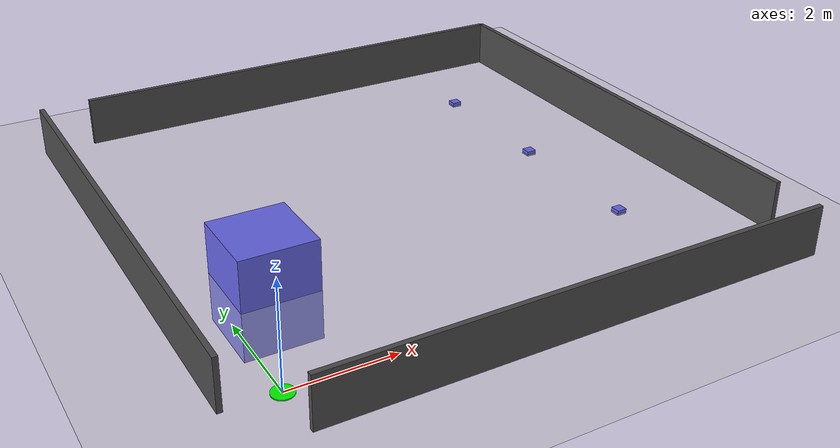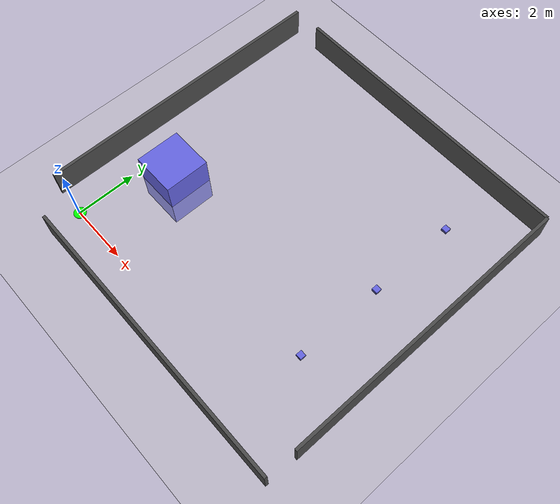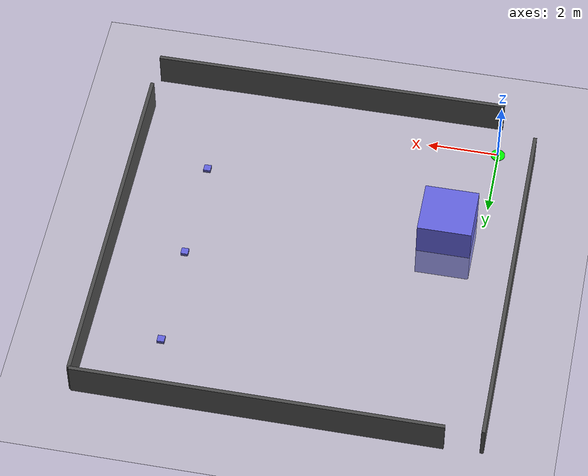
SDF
<?xml version="1.0" ?>
<sdf version="1.6">
  <world name="cafe_world">
    <!-- Light -->
    <include>
      <uri>model://sun</uri>
    </include>
    <!-- Ground plane -->
    <include>
      <uri>model://ground_plane</uri>
    </include>
    <!-- Home Position Marker -->
    <include>
      <uri>model://home_maker</uri>
      <name>home</name>
      <pose>0 0 0 0 0 0</pose>
      <static>true</static>
    </include>
    <!-- Kitchen -->
    <include>
      <uri>model://kitchen</uri>
      <name>kitchen</name>
      <pose>1 3 0 0 0 0</pose>
      <static>true</static>
    </include>
    <!-- Tables -->
    <include>
      <uri>model://table</uri>
      <name>table1</name>
      <pose>8 2 0 0 0 0</pose>
      <static>true</static>
    </include>
    <include>
      <uri>model://table</uri>
      <name>table2</name>
      <pose>8 5 0 0 0 0</pose>
      <static>true</static>
    </include>
    <include>
      <uri>model://table</uri>
      <name>table3</name>
      <pose>8 8 0 0 0 0</pose>
      <static>true</static>
    </include>
    <!-- Walls -->
    <model name="wall_north">
      <static>true</static>
      <pose>5 10 0.5 0 0 0</pose>
      <link name="link">
        <collision name="collision">
          <geometry>
            <box><size>10 0.1 1.0</size></box>
          </geometry>
        </collision>
        <visual name="visual">
          <geometry>
            <box><size>10 0.1 1.0</size></box>
          </geometry>
          <material>
            <ambient>0.3 0.3 0.3 1</ambient>
          </material>
        </visual>
      </link>
    </model>
    <model name="wall_south">
      <static>true</static>
      <pose>5 -1 0.5 0 0 0</pose>
      <link name="link">
        <collision name="collision">
          <geometry>
            <box><size>10 0.1 1.0</size></box>
          </geometry>
        </collision>
        <visual name="visual">
          <geometry>
            <box><size>10 0.1 1.0</size></box>
          </geometry>
          <material>
            <ambient>0.3 0.3 0.3 1</ambient>
          </material>
        </visual>
      </link>
    </model>
    <model name="wall_east">
      <static>true</static>
      <pose>10 5 0.5 0 0 0</pose>
      <link name="link">
        <collision name="collision">
          <geometry>
            <box><size>0.1 10 1.0</size></box>
          </geometry>
        </collision>
        <visual name="visual">
          <geometry>
            <box><size>0.1 10 1.0</size></box>
          </geometry>
          <material>
            <ambient>0.3 0.3 0.3 1</ambient>
          </material>
        </visual>
      </link>
    </model>
    <model name="wall_west">
      <static>true</static>
      <pose>-1 5 0.5 0 0 0</pose>
      <link name="link">
        <collision name="collision">
          <geometry>
            <box><size>0.1 10 1.0</size></box>
          </geometry>
        </collision>
        <visual name="visual">
          <geometry>
            <box><size>0.1 10 1.0</size></box>
          </geometry>
          <material>
            <ambient>0.3 0.3 0.3 1</ambient>
          </material>
        </visual>
      </link>
    </model>
  </world>
</sdf>

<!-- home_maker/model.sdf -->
<sdf version="1.6">
  <model name="home_maker">
    <static>true</static>
    <link name="link">
      <collision name="collision">
        <geometry>
          <cylinder>
            <radius>0.2</radius>
            <length>0.02</length>
          </cylinder>
        </geometry>
      </collision>
      <visual name="visual">
        <geometry>
          <cylinder>
            <radius>0.2</radius>
            <length>0.02</length>
          </cylinder>
        </geometry>
        <material>
          <ambient>0.0 1.0 0.0 1</ambient> <!-- Bright green -->
        </material>
      </visual>
    </link>
  </model>
</sdf>

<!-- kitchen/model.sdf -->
<sdf version="1.6">
  <model name="kitchen">
    <static>true</static>
    <link name="link">
      <collision name="collision">
        <geometry>
          <box><size>1.5 1.5 2.0</size></box>
        </geometry>
      </collision>
      <visual name="visual">
        <geometry>
          <box><size>1.5 1.5 2.0</size></box>
        </geometry>
        <material>
          <ambient>0.4 0.4 0.9 1</ambient>
        </material>
      </visual>
    </link>
  </model>
</sdf>

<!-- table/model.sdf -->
<sdf version="1.6">
  <model name="table">
    <static>true</static>
    <link name="link">
      <collision name="collision">
        <geometry>
          <box><size>0.2 0.2 0.1</size></box>
        </geometry>
      </collision>
      <visual name="visual">
        <geometry>
          <box><size>0.2 0.2 0.1</size></box>
        </geometry>
        <material>
          <ambient>0.4 0.4 0.9 1</ambient>
        </material>
      </visual>
    </link>
  </model>
</sdf>
